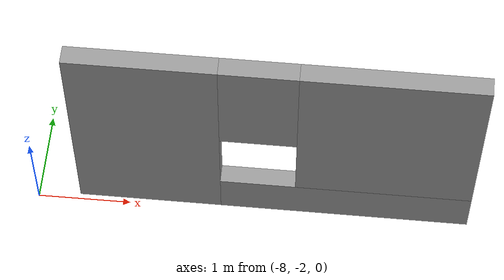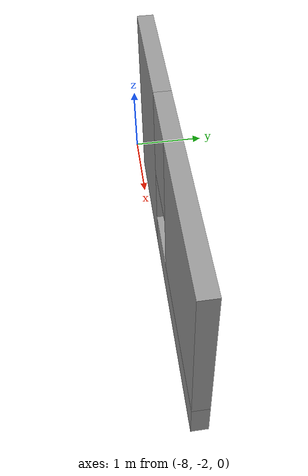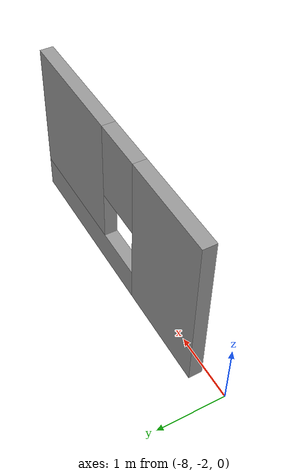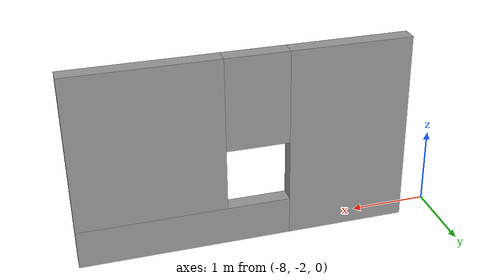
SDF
<sdf version="1.4">
 <world name="default">
  <scene><ambient>0.5 0.5 0.5 1</ambient><background>0.5 0.5 0.5 1</background><shadows>false</shadows></scene>
  <physics type="ode">
   <gravity>0 0 -9.81</gravity>
   <ode>
    <solver><type>quick</type><iters>10</iters><sor>1.3</sor></solver>
    <constraints>
     <cfm>0.0</cfm>
     <erp>0.2</erp>
     <contact_max_correcting_vel>100.0</contact_max_correcting_vel>
     <contact_surface_layer>0.001</contact_surface_layer>
    </constraints>
   </ode>
   <real_time_update_rate>1000</real_time_update_rate>
   <max_step_size>0.001</max_step_size>
  </physics>
  <light type="directional" name="directional_light_1">
   <cast_shadows>false</cast_shadows>
   <pose>0 0 30 0.1 0.1 0</pose>
   <diffuse>1.0 1.0 1.0 1</diffuse>
   <specular>.1 .1 .1 1</specular>
   <attenuation><range>300</range></attenuation>
   <direction>0.1 0.1 -1</direction>
  </light>
  <model name="window_test">
   <link name="Wall_3">
    <pose>-5.445 -1.84 0 0 -0 0</pose>
    <visual name="Wall_3_Visual_0">
     <pose>-1.335 0 1.25 0 -0 0</pose>
     <geometry><box><size>1.54 0.2 2.5</size></box></geometry>
     <material>
      <script><uri>file://media/materials/scripts/gazebo.material</uri><name>Gazebo/Grey</name></script>
     </material>
    </visual>
    <collision name="Wall_3_Collision_0">
     <geometry><box><size>1.54 0.2 2.5</size></box></geometry>
     <pose>-1.335 0 1.25 0 -0 0</pose>
    </collision>
    <visual name="Wall_3_Visual_1">
     <pose>0.77 0 0.25 0 -0 0</pose>
     <geometry><box><size>2.67 0.2 0.5</size></box></geometry>
     <material>
      <script><uri>file://media/materials/scripts/gazebo.material</uri><name>Gazebo/Grey</name></script>
     </material>
    </visual>
    <collision name="Wall_3_Collision_1">
     <geometry><box><size>2.67 0.2 0.5</size></box></geometry>
     <pose>0.77 0 0.25 0 -0 0</pose>
    </collision>
    <visual name="Wall_3_Visual_2">
     <pose>1.17 0 1.5 0 -0 0</pose>
     <geometry><box><size>1.87 0.2 2</size></box></geometry>
     <material>
      <script><uri>file://media/materials/scripts/gazebo.material</uri><name>Gazebo/Grey</name></script>
     </material>
    </visual>
    <collision name="Wall_3_Collision_2">
     <geometry><box><size>1.87 0.2 2</size></box></geometry>
     <pose>1.17 0 1.5 0 -0 0</pose>
    </collision>
    <visual name="Wall_3_Visual_3">
     <pose>-0.165 0 1.9 0 -0 0</pose>
     <geometry><box><size>0.8 0.2 1.2</size></box></geometry>
     <material>
      <script><uri>file://media/materials/scripts/gazebo.material</uri><name>Gazebo/Grey</name></script>
     </material>
    </visual>
    <collision name="Wall_3_Collision_3">
     <geometry><box><size>0.8 0.2 1.2</size></box></geometry>
     <pose>-0.165 0 1.9 0 -0 0</pose>
    </collision>
   </link>
   <static>1</static>
  </model>
 </world>
</sdf>
